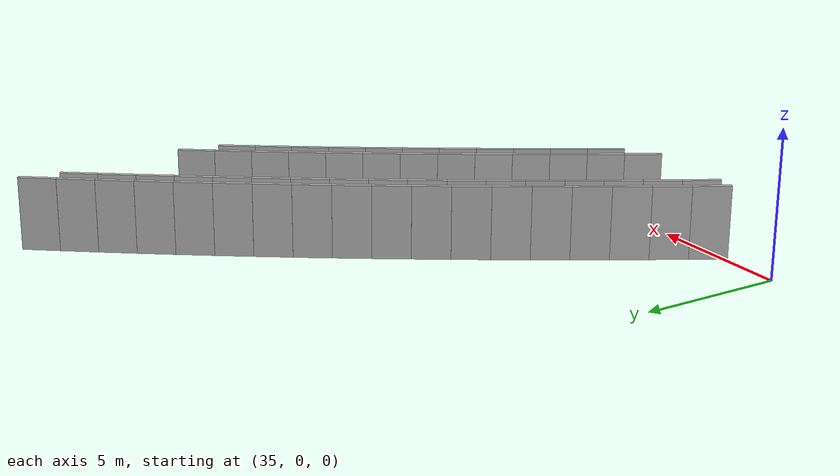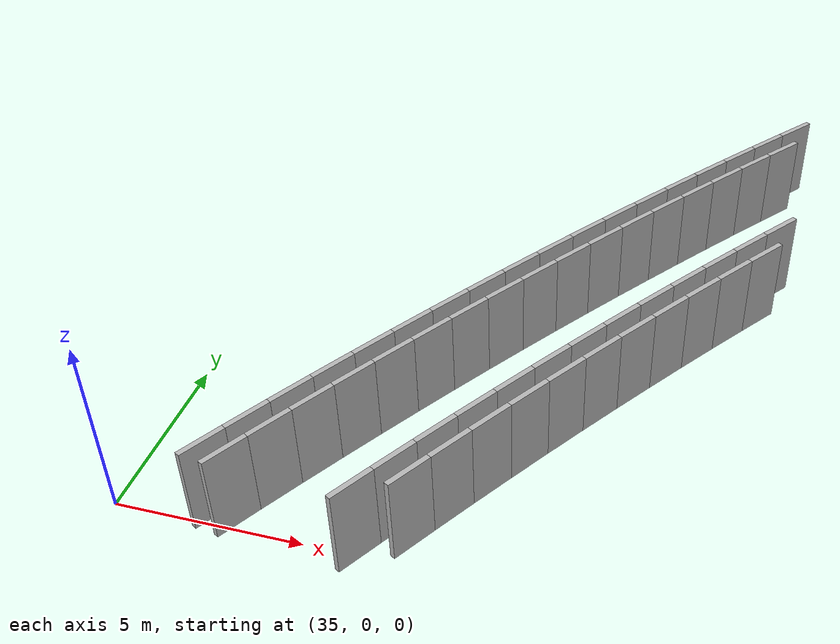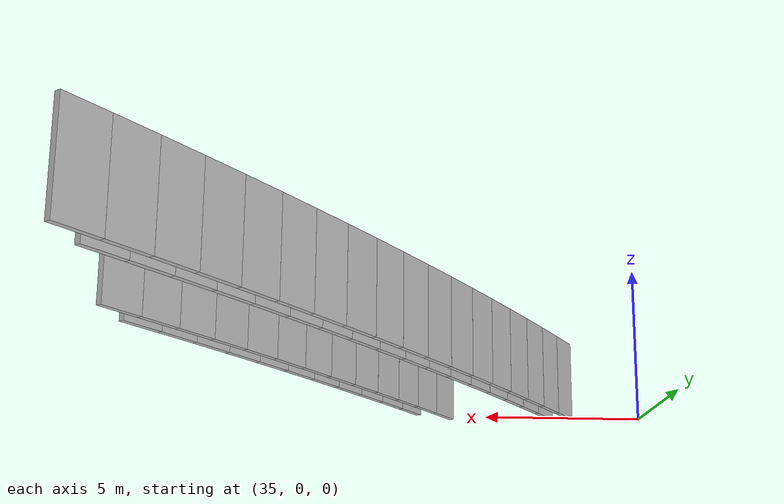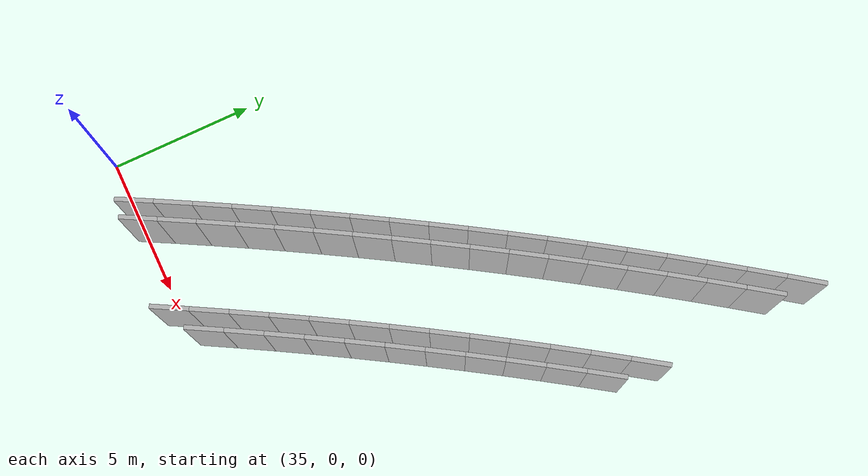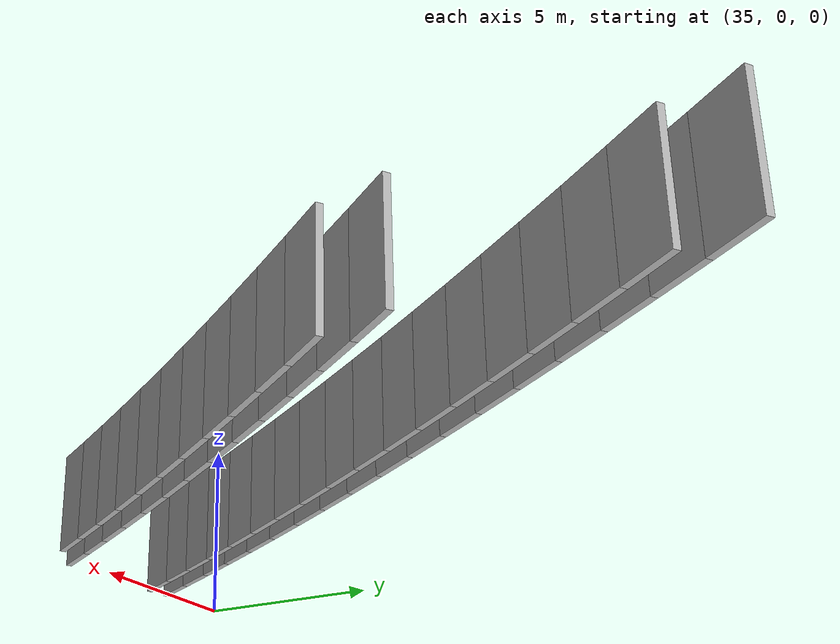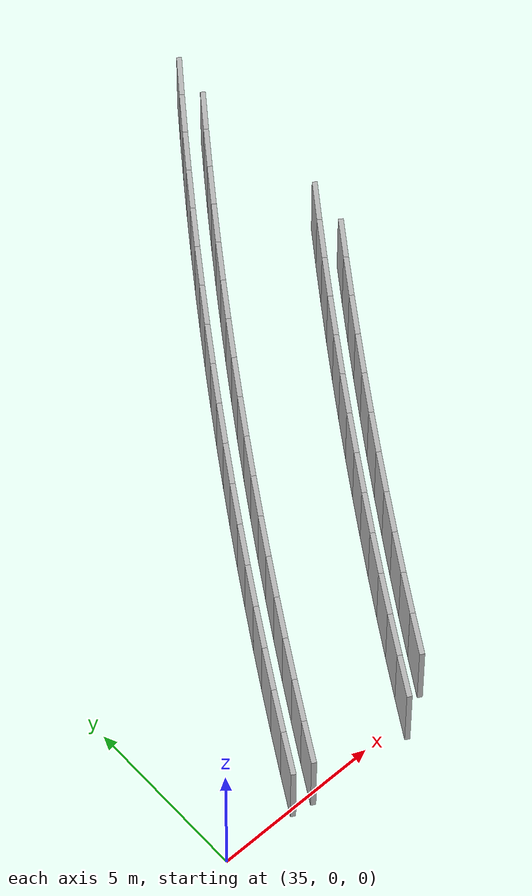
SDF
<?xml version="1.0" ?>
<sdf version="1.6">
  <model name="sps_0105">
    <pose frame="">0 0 0 0 -0 0</pose>
    <static>1</static>
    <self_collide>0</self_collide>
    <allow_auto_disable>0</allow_auto_disable>
    <link name="Wall6481">
      <kinematic>0</kinematic>
      <gravity>1</gravity>
      <self_collide>0</self_collide>
      <collision name="collision">
        <geometry>
          <box>
            <size>1.27275 0.15 2.5</size>
          </box>
        </geometry>
        <pose frame="">0 0 0 0 -0 0</pose>
      </collision>
      <visual name="visual">
        <geometry>
          <box>
            <size>1.27275 0.15 2.5</size>
          </box>
        </geometry>
        <pose frame="">0 0 0 0 -0 0</pose>
        <cast_shadows>1</cast_shadows>
        <transparency>0.0</transparency>
      </visual>
      <pose frame="">49.7471 12.8235 1.25 0 0 -2.19864</pose>
    </link>
    <link name="Wall6482">
      <kinematic>0</kinematic>
      <gravity>1</gravity>
      <self_collide>0</self_collide>
      <collision name="collision">
        <geometry>
          <box>
            <size>1.27269 0.15 2.5</size>
          </box>
        </geometry>
        <pose frame="">0 0 0 0 -0 0</pose>
      </collision>
      <visual name="visual">
        <geometry>
          <box>
            <size>1.27269 0.15 2.5</size>
          </box>
        </geometry>
        <pose frame="">0 0 0 0 -0 0</pose>
        <cast_shadows>1</cast_shadows>
        <transparency>0.0</transparency>
      </visual>
      <pose frame="">49.0037 11.7905 1.25 0 0 -2.19053</pose>
    </link>
    <link name="Wall6483">
      <kinematic>0</kinematic>
      <gravity>1</gravity>
      <self_collide>0</self_collide>
      <collision name="collision">
        <geometry>
          <box>
            <size>1.27285 0.15 2.5</size>
          </box>
        </geometry>
        <pose frame="">0 0 0 0 -0 0</pose>
      </collision>
      <visual name="visual">
        <geometry>
          <box>
            <size>1.27285 0.15 2.5</size>
          </box>
        </geometry>
        <pose frame="">0 0 0 0 -0 0</pose>
        <cast_shadows>1</cast_shadows>
        <transparency>0.0</transparency>
      </visual>
      <pose frame="">48.2685 10.7515 1.25 0 0 -2.18257</pose>
    </link>
    <link name="Wall6484">
      <kinematic>0</kinematic>
      <gravity>1</gravity>
      <self_collide>0</self_collide>
      <collision name="collision">
        <geometry>
          <box>
            <size>1.27266 0.15 2.5</size>
          </box>
        </geometry>
        <pose frame="">0 0 0 0 -0 0</pose>
      </collision>
      <visual name="visual">
        <geometry>
          <box>
            <size>1.27266 0.15 2.5</size>
          </box>
        </geometry>
        <pose frame="">0 0 0 0 -0 0</pose>
        <cast_shadows>1</cast_shadows>
        <transparency>0.0</transparency>
      </visual>
      <pose frame="">47.5419 9.70659 1.25 0 0 -2.17438</pose>
    </link>
    <link name="Wall6485">
      <kinematic>0</kinematic>
      <gravity>1</gravity>
      <self_collide>0</self_collide>
      <collision name="collision">
        <geometry>
          <box>
            <size>1.27276 0.15 2.5</size>
          </box>
        </geometry>
        <pose frame="">0 0 0 0 -0 0</pose>
      </collision>
      <visual name="visual">
        <geometry>
          <box>
            <size>1.27276 0.15 2.5</size>
          </box>
        </geometry>
        <pose frame="">0 0 0 0 -0 0</pose>
        <cast_shadows>1</cast_shadows>
        <transparency>0.0</transparency>
      </visual>
      <pose frame="">46.8237 8.6559 1.25 0 0 -2.16642</pose>
    </link>
    <link name="Wall6486">
      <kinematic>0</kinematic>
      <gravity>1</gravity>
      <self_collide>0</self_collide>
      <collision name="collision">
        <geometry>
          <box>
            <size>1.27284 0.15 2.5</size>
          </box>
        </geometry>
        <pose frame="">0 0 0 0 -0 0</pose>
      </collision>
      <visual name="visual">
        <geometry>
          <box>
            <size>1.27284 0.15 2.5</size>
          </box>
        </geometry>
        <pose frame="">0 0 0 0 -0 0</pose>
        <cast_shadows>1</cast_shadows>
        <transparency>0.0</transparency>
      </visual>
      <pose frame="">46.1139 7.59941 1.25 0 0 -2.15835</pose>
    </link>
    <link name="Wall6487">
      <kinematic>0</kinematic>
      <gravity>1</gravity>
      <self_collide>0</self_collide>
      <collision name="collision">
        <geometry>
          <box>
            <size>1.27272 0.15 2.5</size>
          </box>
        </geometry>
        <pose frame="">0 0 0 0 -0 0</pose>
      </collision>
      <visual name="visual">
        <geometry>
          <box>
            <size>1.27272 0.15 2.5</size>
          </box>
        </geometry>
        <pose frame="">0 0 0 0 -0 0</pose>
        <cast_shadows>1</cast_shadows>
        <transparency>0.0</transparency>
      </visual>
      <pose frame="">45.4127 6.53722 1.25 0 0 -2.15019</pose>
    </link>
    <link name="Wall6488">
      <kinematic>0</kinematic>
      <gravity>1</gravity>
      <self_collide>0</self_collide>
      <collision name="collision">
        <geometry>
          <box>
            <size>1.27266 0.15 2.5</size>
          </box>
        </geometry>
        <pose frame="">0 0 0 0 -0 0</pose>
      </collision>
      <visual name="visual">
        <geometry>
          <box>
            <size>1.27266 0.15 2.5</size>
          </box>
        </geometry>
        <pose frame="">0 0 0 0 -0 0</pose>
        <cast_shadows>1</cast_shadows>
        <transparency>0.0</transparency>
      </visual>
      <pose frame="">44.7201 5.4695 1.25 0 0 -2.14228</pose>
    </link>
    <link name="Wall6489">
      <kinematic>0</kinematic>
      <gravity>1</gravity>
      <self_collide>0</self_collide>
      <collision name="collision">
        <geometry>
          <box>
            <size>1.27265 0.15 2.5</size>
          </box>
        </geometry>
        <pose frame="">0 0 0 0 -0 0</pose>
      </collision>
      <visual name="visual">
        <geometry>
          <box>
            <size>1.27265 0.15 2.5</size>
          </box>
        </geometry>
        <pose frame="">0 0 0 0 -0 0</pose>
        <cast_shadows>1</cast_shadows>
        <transparency>0.0</transparency>
      </visual>
      <pose frame="">44.0361 4.39628 1.25 0 0 -2.13415</pose>
    </link>
    <link name="Wall6490">
      <kinematic>0</kinematic>
      <gravity>1</gravity>
      <self_collide>0</self_collide>
      <collision name="collision">
        <geometry>
          <box>
            <size>1.27269 0.15 2.5</size>
          </box>
        </geometry>
        <pose frame="">0 0 0 0 -0 0</pose>
      </collision>
      <visual name="visual">
        <geometry>
          <box>
            <size>1.27269 0.15 2.5</size>
          </box>
        </geometry>
        <pose frame="">0 0 0 0 -0 0</pose>
        <cast_shadows>1</cast_shadows>
        <transparency>0.0</transparency>
      </visual>
      <pose frame="">43.3607 3.31758 1.25 0 0 -2.12615</pose>
    </link>
    <link name="Wall6491">
      <kinematic>0</kinematic>
      <gravity>1</gravity>
      <self_collide>0</self_collide>
      <collision name="collision">
        <geometry>
          <box>
            <size>1.27273 0.15 2.5</size>
          </box>
        </geometry>
        <pose frame="">0 0 0 0 -0 0</pose>
      </collision>
      <visual name="visual">
        <geometry>
          <box>
            <size>1.27273 0.15 2.5</size>
          </box>
        </geometry>
        <pose frame="">0 0 0 0 -0 0</pose>
        <cast_shadows>1</cast_shadows>
        <transparency>0.0</transparency>
      </visual>
      <pose frame="">42.6941 2.23347 1.25 0 0 -2.11814</pose>
    </link>
    <link name="Wall6492">
      <kinematic>0</kinematic>
      <gravity>1</gravity>
      <self_collide>0</self_collide>
      <collision name="collision">
        <geometry>
          <box>
            <size>1.27302 0.15 2.5</size>
          </box>
        </geometry>
        <pose frame="">0 0 0 0 -0 0</pose>
      </collision>
      <visual name="visual">
        <geometry>
          <box>
            <size>1.27302 0.15 2.5</size>
          </box>
        </geometry>
        <pose frame="">0 0 0 0 -0 0</pose>
        <cast_shadows>1</cast_shadows>
        <transparency>0.0</transparency>
      </visual>
      <pose frame="">42.0361 1.14387 1.25 0 0 -2.10999</pose>
    </link>
    <link name="Wall6493">
      <kinematic>0</kinematic>
      <gravity>1</gravity>
      <self_collide>0</self_collide>
      <collision name="collision">
        <geometry>
          <box>
            <size>1.27276 0.15 2.5</size>
          </box>
        </geometry>
        <pose frame="">0 0 0 0 -0 0</pose>
      </collision>
      <visual name="visual">
        <geometry>
          <box>
            <size>1.27276 0.15 2.5</size>
          </box>
        </geometry>
        <pose frame="">0 0 0 0 -0 0</pose>
        <cast_shadows>1</cast_shadows>
        <transparency>0.0</transparency>
      </visual>
      <pose frame="">41.3869 0.0489949 1.25 0 0 -2.10203</pose>
    </link>
    <link name="Wall9102">
      <kinematic>0</kinematic>
      <gravity>1</gravity>
      <self_collide>0</self_collide>
      <collision name="collision">
        <geometry>
          <box>
            <size>1.27178 0.15 2.5</size>
          </box>
        </geometry>
        <pose frame="">0 0 0 0 -0 0</pose>
      </collision>
      <visual name="visual">
        <geometry>
          <box>
            <size>1.27178 0.15 2.5</size>
          </box>
        </geometry>
        <pose frame="">0 0 0 0 -0 0</pose>
        <cast_shadows>1</cast_shadows>
        <transparency>0.0</transparency>
      </visual>
      <pose frame="">49.4011 17.225 1.25 0 0 -2.21952</pose>
    </link>
    <link name="Wall9103">
      <kinematic>0</kinematic>
      <gravity>1</gravity>
      <self_collide>0</self_collide>
      <collision name="collision">
        <geometry>
          <box>
            <size>1.27194 0.15 2.5</size>
          </box>
        </geometry>
        <pose frame="">0 0 0 0 -0 0</pose>
      </collision>
      <visual name="visual">
        <geometry>
          <box>
            <size>1.27194 0.15 2.5</size>
          </box>
        </geometry>
        <pose frame="">0 0 0 0 -0 0</pose>
        <cast_shadows>1</cast_shadows>
        <transparency>0.0</transparency>
      </visual>
      <pose frame="">48.6366 16.2085 1.25 0 0 -2.21162</pose>
    </link>
    <link name="Wall9104">
      <kinematic>0</kinematic>
      <gravity>1</gravity>
      <self_collide>0</self_collide>
      <collision name="collision">
        <geometry>
          <box>
            <size>1.27171 0.15 2.5</size>
          </box>
        </geometry>
        <pose frame="">0 0 0 0 -0 0</pose>
      </collision>
      <visual name="visual">
        <geometry>
          <box>
            <size>1.27171 0.15 2.5</size>
          </box>
        </geometry>
        <pose frame="">0 0 0 0 -0 0</pose>
        <cast_shadows>1</cast_shadows>
        <transparency>0.0</transparency>
      </visual>
      <pose frame="">47.8805 15.1859 1.25 0 0 -2.20346</pose>
    </link>
    <link name="Wall9105">
      <kinematic>0</kinematic>
      <gravity>1</gravity>
      <self_collide>0</self_collide>
      <collision name="collision">
        <geometry>
          <box>
            <size>1.27178 0.15 2.5</size>
          </box>
        </geometry>
        <pose frame="">0 0 0 0 -0 0</pose>
      </collision>
      <visual name="visual">
        <geometry>
          <box>
            <size>1.27178 0.15 2.5</size>
          </box>
        </geometry>
        <pose frame="">0 0 0 0 -0 0</pose>
        <cast_shadows>1</cast_shadows>
        <transparency>0.0</transparency>
      </visual>
      <pose frame="">47.1325 14.1574 1.25 0 0 -2.1957</pose>
    </link>
    <link name="Wall9106">
      <kinematic>0</kinematic>
      <gravity>1</gravity>
      <self_collide>0</self_collide>
      <collision name="collision">
        <geometry>
          <box>
            <size>1.27165 0.15 2.5</size>
          </box>
        </geometry>
        <pose frame="">0 0 0 0 -0 0</pose>
      </collision>
      <visual name="visual">
        <geometry>
          <box>
            <size>1.27165 0.15 2.5</size>
          </box>
        </geometry>
        <pose frame="">0 0 0 0 -0 0</pose>
        <cast_shadows>1</cast_shadows>
        <transparency>0.0</transparency>
      </visual>
      <pose frame="">46.3926 13.1231 1.25 0 0 -2.18781</pose>
    </link>
    <link name="Wall9107">
      <kinematic>0</kinematic>
      <gravity>1</gravity>
      <self_collide>0</self_collide>
      <collision name="collision">
        <geometry>
          <box>
            <size>1.27174 0.15 2.5</size>
          </box>
        </geometry>
        <pose frame="">0 0 0 0 -0 0</pose>
      </collision>
      <visual name="visual">
        <geometry>
          <box>
            <size>1.27174 0.15 2.5</size>
          </box>
        </geometry>
        <pose frame="">0 0 0 0 -0 0</pose>
        <cast_shadows>1</cast_shadows>
        <transparency>0.0</transparency>
      </visual>
      <pose frame="">45.6609 12.083 1.25 0 0 -2.1799</pose>
    </link>
    <link name="Wall9108">
      <kinematic>0</kinematic>
      <gravity>1</gravity>
      <self_collide>0</self_collide>
      <collision name="collision">
        <geometry>
          <box>
            <size>1.27175 0.15 2.5</size>
          </box>
        </geometry>
        <pose frame="">0 0 0 0 -0 0</pose>
      </collision>
      <visual name="visual">
        <geometry>
          <box>
            <size>1.27175 0.15 2.5</size>
          </box>
        </geometry>
        <pose frame="">0 0 0 0 -0 0</pose>
        <cast_shadows>1</cast_shadows>
        <transparency>0.0</transparency>
      </visual>
      <pose frame="">44.9373 11.0372 1.25 0 0 -2.17224</pose>
    </link>
    <link name="Wall9109">
      <kinematic>0</kinematic>
      <gravity>1</gravity>
      <self_collide>0</self_collide>
      <collision name="collision">
        <geometry>
          <box>
            <size>1.27171 0.15 2.5</size>
          </box>
        </geometry>
        <pose frame="">0 0 0 0 -0 0</pose>
      </collision>
      <visual name="visual">
        <geometry>
          <box>
            <size>1.27171 0.15 2.5</size>
          </box>
        </geometry>
        <pose frame="">0 0 0 0 -0 0</pose>
        <cast_shadows>1</cast_shadows>
        <transparency>0.0</transparency>
      </visual>
      <pose frame="">44.222 9.9857 1.25 0 0 -2.16408</pose>
    </link>
    <link name="Wall9110">
      <kinematic>0</kinematic>
      <gravity>1</gravity>
      <self_collide>0</self_collide>
      <collision name="collision">
        <geometry>
          <box>
            <size>1.27183 0.15 2.5</size>
          </box>
        </geometry>
        <pose frame="">0 0 0 0 -0 0</pose>
      </collision>
      <visual name="visual">
        <geometry>
          <box>
            <size>1.27183 0.15 2.5</size>
          </box>
        </geometry>
        <pose frame="">0 0 0 0 -0 0</pose>
        <cast_shadows>1</cast_shadows>
        <transparency>0.0</transparency>
      </visual>
      <pose frame="">43.5151 8.92851 1.25 0 0 -2.15628</pose>
    </link>
    <link name="Wall9111">
      <kinematic>0</kinematic>
      <gravity>1</gravity>
      <self_collide>0</self_collide>
      <collision name="collision">
        <geometry>
          <box>
            <size>1.2719 0.15 2.5</size>
          </box>
        </geometry>
        <pose frame="">0 0 0 0 -0 0</pose>
      </collision>
      <visual name="visual">
        <geometry>
          <box>
            <size>1.2719 0.15 2.5</size>
          </box>
        </geometry>
        <pose frame="">0 0 0 0 -0 0</pose>
        <cast_shadows>1</cast_shadows>
        <transparency>0.0</transparency>
      </visual>
      <pose frame="">42.8165 7.86571 1.25 0 0 -2.14832</pose>
    </link>
    <link name="Wall9112">
      <kinematic>0</kinematic>
      <gravity>1</gravity>
      <self_collide>0</self_collide>
      <collision name="collision">
        <geometry>
          <box>
            <size>1.27174 0.15 2.5</size>
          </box>
        </geometry>
        <pose frame="">0 0 0 0 -0 0</pose>
      </collision>
      <visual name="visual">
        <geometry>
          <box>
            <size>1.27174 0.15 2.5</size>
          </box>
        </geometry>
        <pose frame="">0 0 0 0 -0 0</pose>
        <cast_shadows>1</cast_shadows>
        <transparency>0.0</transparency>
      </visual>
      <pose frame="">42.1264 6.79741 1.25 0 0 -2.14035</pose>
    </link>
    <link name="Wall9113">
      <kinematic>0</kinematic>
      <gravity>1</gravity>
      <self_collide>0</self_collide>
      <collision name="collision">
        <geometry>
          <box>
            <size>1.27169 0.15 2.5</size>
          </box>
        </geometry>
        <pose frame="">0 0 0 0 -0 0</pose>
      </collision>
      <visual name="visual">
        <geometry>
          <box>
            <size>1.27169 0.15 2.5</size>
          </box>
        </geometry>
        <pose frame="">0 0 0 0 -0 0</pose>
        <cast_shadows>1</cast_shadows>
        <transparency>0.0</transparency>
      </visual>
      <pose frame="">41.4448 5.7238 1.25 0 0 -2.13259</pose>
    </link>
    <link name="Wall9114">
      <kinematic>0</kinematic>
      <gravity>1</gravity>
      <self_collide>0</self_collide>
      <collision name="collision">
        <geometry>
          <box>
            <size>1.27178 0.15 2.5</size>
          </box>
        </geometry>
        <pose frame="">0 0 0 0 -0 0</pose>
      </collision>
      <visual name="visual">
        <geometry>
          <box>
            <size>1.27178 0.15 2.5</size>
          </box>
        </geometry>
        <pose frame="">0 0 0 0 -0 0</pose>
        <cast_shadows>1</cast_shadows>
        <transparency>0.0</transparency>
      </visual>
      <pose frame="">40.7715 4.64488 1.25 0 0 -2.12473</pose>
    </link>
    <link name="Wall9115">
      <kinematic>0</kinematic>
      <gravity>1</gravity>
      <self_collide>0</self_collide>
      <collision name="collision">
        <geometry>
          <box>
            <size>1.27187 0.15 2.5</size>
          </box>
        </geometry>
        <pose frame="">0 0 0 0 -0 0</pose>
      </collision>
      <visual name="visual">
        <geometry>
          <box>
            <size>1.27187 0.15 2.5</size>
          </box>
        </geometry>
        <pose frame="">0 0 0 0 -0 0</pose>
        <cast_shadows>1</cast_shadows>
        <transparency>0.0</transparency>
      </visual>
      <pose frame="">40.1068 3.56059 1.25 0 0 -2.11675</pose>
    </link>
    <link name="Wall9116">
      <kinematic>0</kinematic>
      <gravity>1</gravity>
      <self_collide>0</self_collide>
      <collision name="collision">
        <geometry>
          <box>
            <size>1.27164 0.15 2.5</size>
          </box>
        </geometry>
        <pose frame="">0 0 0 0 -0 0</pose>
      </collision>
      <visual name="visual">
        <geometry>
          <box>
            <size>1.27164 0.15 2.5</size>
          </box>
        </geometry>
        <pose frame="">0 0 0 0 -0 0</pose>
        <cast_shadows>1</cast_shadows>
        <transparency>0.0</transparency>
      </visual>
      <pose frame="">39.4509 2.47108 1.25 0 0 -2.10874</pose>
    </link>
    <link name="Wall9117">
      <kinematic>0</kinematic>
      <gravity>1</gravity>
      <self_collide>0</self_collide>
      <collision name="collision">
        <geometry>
          <box>
            <size>1.2717 0.15 2.5</size>
          </box>
        </geometry>
        <pose frame="">0 0 0 0 -0 0</pose>
      </collision>
      <visual name="visual">
        <geometry>
          <box>
            <size>1.2717 0.15 2.5</size>
          </box>
        </geometry>
        <pose frame="">0 0 0 0 -0 0</pose>
        <cast_shadows>1</cast_shadows>
        <transparency>0.0</transparency>
      </visual>
      <pose frame="">38.8036 1.37648 1.25 0 0 -2.1009</pose>
    </link>
    <link name="Wall9118">
      <kinematic>0</kinematic>
      <gravity>1</gravity>
      <self_collide>0</self_collide>
      <collision name="collision">
        <geometry>
          <box>
            <size>1.27192 0.15 2.5</size>
          </box>
        </geometry>
        <pose frame="">0 0 0 0 -0 0</pose>
      </collision>
      <visual name="visual">
        <geometry>
          <box>
            <size>1.27192 0.15 2.5</size>
          </box>
        </geometry>
        <pose frame="">0 0 0 0 -0 0</pose>
        <cast_shadows>1</cast_shadows>
        <transparency>0.0</transparency>
      </visual>
      <pose frame="">38.1649 0.276687 1.25 0 0 -2.09298</pose>
    </link>
    <link name="Wall16529">
      <kinematic>0</kinematic>
      <gravity>1</gravity>
      <self_collide>0</self_collide>
      <collision name="collision">
        <geometry>
          <box>
            <size>1.27247 0.15 2.5</size>
          </box>
        </geometry>
        <pose frame="">0 0 0 0 -0 0</pose>
      </collision>
      <visual name="visual">
        <geometry>
          <box>
            <size>1.27247 0.15 2.5</size>
          </box>
        </geometry>
        <pose frame="">0 0 0 0 -0 0</pose>
        <cast_shadows>1</cast_shadows>
        <transparency>0.0</transparency>
      </visual>
      <pose frame="">49.469 11.4109 1.25 0 0 -2.19029</pose>
    </link>
    <link name="Wall16530">
      <kinematic>0</kinematic>
      <gravity>1</gravity>
      <self_collide>0</self_collide>
      <collision name="collision">
        <geometry>
          <box>
            <size>1.27231 0.15 2.5</size>
          </box>
        </geometry>
        <pose frame="">0 0 0 0 -0 0</pose>
      </collision>
      <visual name="visual">
        <geometry>
          <box>
            <size>1.27231 0.15 2.5</size>
          </box>
        </geometry>
        <pose frame="">0 0 0 0 -0 0</pose>
        <cast_shadows>1</cast_shadows>
        <transparency>0.0</transparency>
      </visual>
      <pose frame="">48.7345 10.372 1.25 0 0 -2.18222</pose>
    </link>
    <link name="Wall16531">
      <kinematic>0</kinematic>
      <gravity>1</gravity>
      <self_collide>0</self_collide>
      <collision name="collision">
        <geometry>
          <box>
            <size>1.27235 0.15 2.5</size>
          </box>
        </geometry>
        <pose frame="">0 0 0 0 -0 0</pose>
      </collision>
      <visual name="visual">
        <geometry>
          <box>
            <size>1.27235 0.15 2.5</size>
          </box>
        </geometry>
        <pose frame="">0 0 0 0 -0 0</pose>
        <cast_shadows>1</cast_shadows>
        <transparency>0.0</transparency>
      </visual>
      <pose frame="">48.0084 9.32719 1.25 0 0 -2.17402</pose>
    </link>
    <link name="Wall16532">
      <kinematic>0</kinematic>
      <gravity>1</gravity>
      <self_collide>0</self_collide>
      <collision name="collision">
        <geometry>
          <box>
            <size>1.27227 0.15 2.5</size>
          </box>
        </geometry>
        <pose frame="">0 0 0 0 -0 0</pose>
      </collision>
      <visual name="visual">
        <geometry>
          <box>
            <size>1.27227 0.15 2.5</size>
          </box>
        </geometry>
        <pose frame="">0 0 0 0 -0 0</pose>
        <cast_shadows>1</cast_shadows>
        <transparency>0.0</transparency>
      </visual>
      <pose frame="">47.2908 8.2766 1.25 0 0 -2.1661</pose>
    </link>
    <link name="Wall16533">
      <kinematic>0</kinematic>
      <gravity>1</gravity>
      <self_collide>0</self_collide>
      <collision name="collision">
        <geometry>
          <box>
            <size>1.27254 0.15 2.5</size>
          </box>
        </geometry>
        <pose frame="">0 0 0 0 -0 0</pose>
      </collision>
      <visual name="visual">
        <geometry>
          <box>
            <size>1.27254 0.15 2.5</size>
          </box>
        </geometry>
        <pose frame="">0 0 0 0 -0 0</pose>
        <cast_shadows>1</cast_shadows>
        <transparency>0.0</transparency>
      </visual>
      <pose frame="">46.5815 7.2202 1.25 0 0 -2.15799</pose>
    </link>
    <link name="Wall16534">
      <kinematic>0</kinematic>
      <gravity>1</gravity>
      <self_collide>0</self_collide>
      <collision name="collision">
        <geometry>
          <box>
            <size>1.27245 0.15 2.5</size>
          </box>
        </geometry>
        <pose frame="">0 0 0 0 -0 0</pose>
      </collision>
      <visual name="visual">
        <geometry>
          <box>
            <size>1.27245 0.15 2.5</size>
          </box>
        </geometry>
        <pose frame="">0 0 0 0 -0 0</pose>
        <cast_shadows>1</cast_shadows>
        <transparency>0.0</transparency>
      </visual>
      <pose frame="">45.8809 6.158 1.25 0 0 -2.14987</pose>
    </link>
    <link name="Wall16535">
      <kinematic>0</kinematic>
      <gravity>1</gravity>
      <self_collide>0</self_collide>
      <collision name="collision">
        <geometry>
          <box>
            <size>1.27226 0.15 2.5</size>
          </box>
        </geometry>
        <pose frame="">0 0 0 0 -0 0</pose>
      </collision>
      <visual name="visual">
        <geometry>
          <box>
            <size>1.27226 0.15 2.5</size>
          </box>
        </geometry>
        <pose frame="">0 0 0 0 -0 0</pose>
        <cast_shadows>1</cast_shadows>
        <transparency>0.0</transparency>
      </visual>
      <pose frame="">45.1889 5.09029 1.25 0 0 -2.14179</pose>
    </link>
    <link name="Wall16536">
      <kinematic>0</kinematic>
      <gravity>1</gravity>
      <self_collide>0</self_collide>
      <collision name="collision">
        <geometry>
          <box>
            <size>1.27258 0.15 2.5</size>
          </box>
        </geometry>
        <pose frame="">0 0 0 0 -0 0</pose>
      </collision>
      <visual name="visual">
        <geometry>
          <box>
            <size>1.27258 0.15 2.5</size>
          </box>
        </geometry>
        <pose frame="">0 0 0 0 -0 0</pose>
        <cast_shadows>1</cast_shadows>
        <transparency>0.0</transparency>
      </visual>
      <pose frame="">44.5055 4.01698 1.25 0 0 -2.13379</pose>
    </link>
    <link name="Wall16537">
      <kinematic>0</kinematic>
      <gravity>1</gravity>
      <self_collide>0</self_collide>
      <collision name="collision">
        <geometry>
          <box>
            <size>1.27227 0.15 2.5</size>
          </box>
        </geometry>
        <pose frame="">0 0 0 0 -0 0</pose>
      </collision>
      <visual name="visual">
        <geometry>
          <box>
            <size>1.27227 0.15 2.5</size>
          </box>
        </geometry>
        <pose frame="">0 0 0 0 -0 0</pose>
        <cast_shadows>1</cast_shadows>
        <transparency>0.0</transparency>
      </visual>
      <pose frame="">43.8307 2.93819 1.25 0 0 -2.12562</pose>
    </link>
    <link name="Wall16538">
      <kinematic>0</kinematic>
      <gravity>1</gravity>
      <self_collide>0</self_collide>
      <collision name="collision">
        <geometry>
          <box>
            <size>1.27247 0.15 2.5</size>
          </box>
        </geometry>
        <pose frame="">0 0 0 0 -0 0</pose>
      </collision>
      <visual name="visual">
        <geometry>
          <box>
            <size>1.27247 0.15 2.5</size>
          </box>
        </geometry>
        <pose frame="">0 0 0 0 -0 0</pose>
        <cast_shadows>1</cast_shadows>
        <transparency>0.0</transparency>
      </visual>
      <pose frame="">43.1648 1.85399 1.25 0 0 -2.11753</pose>
    </link>
    <link name="Wall16539">
      <kinematic>0</kinematic>
      <gravity>1</gravity>
      <self_collide>0</self_collide>
      <collision name="collision">
        <geometry>
          <box>
            <size>1.27246 0.15 2.5</size>
          </box>
        </geometry>
        <pose frame="">0 0 0 0 -0 0</pose>
      </collision>
      <visual name="visual">
        <geometry>
          <box>
            <size>1.27246 0.15 2.5</size>
          </box>
        </geometry>
        <pose frame="">0 0 0 0 -0 0</pose>
        <cast_shadows>1</cast_shadows>
        <transparency>0.0</transparency>
      </visual>
      <pose frame="">42.5077 0.764388 1.25 0 0 -2.10953</pose>
    </link>
    <link name="Wall20957">
      <kinematic>0</kinematic>
      <gravity>1</gravity>
      <self_collide>0</self_collide>
      <collision name="collision">
        <geometry>
          <box>
            <size>1.28676 0.15 2.5</size>
          </box>
        </geometry>
        <pose frame="">0 0 0 0 -0 0</pose>
      </collision>
      <visual name="visual">
        <geometry>
          <box>
            <size>1.28676 0.15 2.5</size>
          </box>
        </geometry>
        <pose frame="">0 0 0 0 -0 0</pose>
        <cast_shadows>1</cast_shadows>
        <transparency>0.0</transparency>
      </visual>
      <pose frame="">49.672 18.5692 1.25 0 0 -2.22714</pose>
    </link>
    <link name="Wall20958">
      <kinematic>0</kinematic>
      <gravity>1</gravity>
      <self_collide>0</self_collide>
      <collision name="collision">
        <geometry>
          <box>
            <size>1.28692 0.15 2.5</size>
          </box>
        </geometry>
        <pose frame="">0 0 0 0 -0 0</pose>
      </collision>
      <visual name="visual">
        <geometry>
          <box>
            <size>1.28692 0.15 2.5</size>
          </box>
        </geometry>
        <pose frame="">0 0 0 0 -0 0</pose>
        <cast_shadows>1</cast_shadows>
        <transparency>0.0</transparency>
      </visual>
      <pose frame="">48.8909 17.5466 1.25 0 0 -2.21917</pose>
    </link>
    <link name="Wall20959">
      <kinematic>0</kinematic>
      <gravity>1</gravity>
      <self_collide>0</self_collide>
      <collision name="collision">
        <geometry>
          <box>
            <size>1.28702 0.15 2.5</size>
          </box>
        </geometry>
        <pose frame="">0 0 0 0 -0 0</pose>
      </collision>
      <visual name="visual">
        <geometry>
          <box>
            <size>1.28702 0.15 2.5</size>
          </box>
        </geometry>
        <pose frame="">0 0 0 0 -0 0</pose>
        <cast_shadows>1</cast_shadows>
        <transparency>0.0</transparency>
      </visual>
      <pose frame="">48.1178 16.5177 1.25 0 0 -2.21122</pose>
    </link>
    <link name="Wall20960">
      <kinematic>0</kinematic>
      <gravity>1</gravity>
      <self_collide>0</self_collide>
      <collision name="collision">
        <geometry>
          <box>
            <size>1.28684 0.15 2.5</size>
          </box>
        </geometry>
        <pose frame="">0 0 0 0 -0 0</pose>
      </collision>
      <visual name="visual">
        <geometry>
          <box>
            <size>1.28684 0.15 2.5</size>
          </box>
        </geometry>
        <pose frame="">0 0 0 0 -0 0</pose>
        <cast_shadows>1</cast_shadows>
        <transparency>0.0</transparency>
      </visual>
      <pose frame="">47.353 15.4827 1.25 0 0 -2.20313</pose>
    </link>
    <link name="Wall20961">
      <kinematic>0</kinematic>
      <gravity>1</gravity>
      <self_collide>0</self_collide>
      <collision name="collision">
        <geometry>
          <box>
            <size>1.28705 0.15 2.5</size>
          </box>
        </geometry>
        <pose frame="">0 0 0 0 -0 0</pose>
      </collision>
      <visual name="visual">
        <geometry>
          <box>
            <size>1.28705 0.15 2.5</size>
          </box>
        </geometry>
        <pose frame="">0 0 0 0 -0 0</pose>
        <cast_shadows>1</cast_shadows>
        <transparency>0.0</transparency>
      </visual>
      <pose frame="">46.5965 14.4416 1.25 0 0 -2.19521</pose>
    </link>
    <link name="Wall20962">
      <kinematic>0</kinematic>
      <gravity>1</gravity>
      <self_collide>0</self_collide>
      <collision name="collision">
        <geometry>
          <box>
            <size>1.28684 0.15 2.5</size>
          </box>
        </geometry>
        <pose frame="">0 0 0 0 -0 0</pose>
      </collision>
      <visual name="visual">
        <geometry>
          <box>
            <size>1.28684 0.15 2.5</size>
          </box>
        </geometry>
        <pose frame="">0 0 0 0 -0 0</pose>
        <cast_shadows>1</cast_shadows>
        <transparency>0.0</transparency>
      </visual>
      <pose frame="">45.8483 13.3945 1.25 0 0 -2.18723</pose>
    </link>
    <link name="Wall20963">
      <kinematic>0</kinematic>
      <gravity>1</gravity>
      <self_collide>0</self_collide>
      <collision name="collision">
        <geometry>
          <box>
            <size>1.28696 0.15 2.5</size>
          </box>
        </geometry>
        <pose frame="">0 0 0 0 -0 0</pose>
      </collision>
      <visual name="visual">
        <geometry>
          <box>
            <size>1.28696 0.15 2.5</size>
          </box>
        </geometry>
        <pose frame="">0 0 0 0 -0 0</pose>
        <cast_shadows>1</cast_shadows>
        <transparency>0.0</transparency>
      </visual>
      <pose frame="">45.1084 12.3416 1.25 0 0 -2.17945</pose>
    </link>
    <link name="Wall20964">
      <kinematic>0</kinematic>
      <gravity>1</gravity>
      <self_collide>0</self_collide>
      <collision name="collision">
        <geometry>
          <box>
            <size>1.2868 0.15 2.5</size>
          </box>
        </geometry>
        <pose frame="">0 0 0 0 -0 0</pose>
      </collision>
      <visual name="visual">
        <geometry>
          <box>
            <size>1.2868 0.15 2.5</size>
          </box>
        </geometry>
        <pose frame="">0 0 0 0 -0 0</pose>
        <cast_shadows>1</cast_shadows>
        <transparency>0.0</transparency>
      </visual>
      <pose frame="">44.3769 11.2828 1.25 0 0 -2.17118</pose>
    </link>
    <link name="Wall20965">
      <kinematic>0</kinematic>
      <gravity>1</gravity>
      <self_collide>0</self_collide>
      <collision name="collision">
        <geometry>
          <box>
            <size>1.28691 0.15 2.5</size>
          </box>
        </geometry>
        <pose frame="">0 0 0 0 -0 0</pose>
      </collision>
      <visual name="visual">
        <geometry>
          <box>
            <size>1.28691 0.15 2.5</size>
          </box>
        </geometry>
        <pose frame="">0 0 0 0 -0 0</pose>
        <cast_shadows>1</cast_shadows>
        <transparency>0.0</transparency>
      </visual>
      <pose frame="">43.654 10.2182 1.25 0 0 -2.16344</pose>
    </link>
    <link name="Wall20966">
      <kinematic>0</kinematic>
      <gravity>1</gravity>
      <self_collide>0</self_collide>
      <collision name="collision">
        <geometry>
          <box>
            <size>1.2869 0.15 2.5</size>
          </box>
        </geometry>
        <pose frame="">0 0 0 0 -0 0</pose>
      </collision>
      <visual name="visual">
        <geometry>
          <box>
            <size>1.2869 0.15 2.5</size>
          </box>
        </geometry>
        <pose frame="">0 0 0 0 -0 0</pose>
        <cast_shadows>1</cast_shadows>
        <transparency>0.0</transparency>
      </visual>
      <pose frame="">42.9395 9.14787 1.25 0 0 -2.15541</pose>
    </link>
    <link name="Wall20967">
      <kinematic>0</kinematic>
      <gravity>1</gravity>
      <self_collide>0</self_collide>
      <collision name="collision">
        <geometry>
          <box>
            <size>1.28687 0.15 2.5</size>
          </box>
        </geometry>
        <pose frame="">0 0 0 0 -0 0</pose>
      </collision>
      <visual name="visual">
        <geometry>
          <box>
            <size>1.28687 0.15 2.5</size>
          </box>
        </geometry>
        <pose frame="">0 0 0 0 -0 0</pose>
        <cast_shadows>1</cast_shadows>
        <transparency>0.0</transparency>
      </visual>
      <pose frame="">42.2336 8.07188 1.25 0 0 -2.14742</pose>
    </link>
    <link name="Wall20968">
      <kinematic>0</kinematic>
      <gravity>1</gravity>
      <self_collide>0</self_collide>
      <collision name="collision">
        <geometry>
          <box>
            <size>1.28693 0.15 2.5</size>
          </box>
        </geometry>
        <pose frame="">0 0 0 0 -0 0</pose>
      </collision>
      <visual name="visual">
        <geometry>
          <box>
            <size>1.28693 0.15 2.5</size>
          </box>
        </geometry>
        <pose frame="">0 0 0 0 -0 0</pose>
        <cast_shadows>1</cast_shadows>
        <transparency>0.0</transparency>
      </visual>
      <pose frame="">41.5363 6.99028 1.25 0 0 -2.13944</pose>
    </link>
    <link name="Wall20969">
      <kinematic>0</kinematic>
      <gravity>1</gravity>
      <self_collide>0</self_collide>
      <collision name="collision">
        <geometry>
          <box>
            <size>1.28686 0.15 2.5</size>
          </box>
        </geometry>
        <pose frame="">0 0 0 0 -0 0</pose>
      </collision>
      <visual name="visual">
        <geometry>
          <box>
            <size>1.28686 0.15 2.5</size>
          </box>
        </geometry>
        <pose frame="">0 0 0 0 -0 0</pose>
        <cast_shadows>1</cast_shadows>
        <transparency>0.0</transparency>
      </visual>
      <pose frame="">40.8476 5.90318 1.25 0 0 -2.13155</pose>
    </link>
    <link name="Wall20970">
      <kinematic>0</kinematic>
      <gravity>1</gravity>
      <self_collide>0</self_collide>
      <collision name="collision">
        <geometry>
          <box>
            <size>1.28692 0.15 2.5</size>
          </box>
        </geometry>
        <pose frame="">0 0 0 0 -0 0</pose>
      </collision>
      <visual name="visual">
        <geometry>
          <box>
            <size>1.28692 0.15 2.5</size>
          </box>
        </geometry>
        <pose frame="">0 0 0 0 -0 0</pose>
        <cast_shadows>1</cast_shadows>
        <transparency>0.0</transparency>
      </visual>
      <pose frame="">40.1676 4.81068 1.25 0 0 -2.12364</pose>
    </link>
    <link name="Wall20971">
      <kinematic>0</kinematic>
      <gravity>1</gravity>
      <self_collide>0</self_collide>
      <collision name="collision">
        <geometry>
          <box>
            <size>1.28683 0.15 2.5</size>
          </box>
        </geometry>
        <pose frame="">0 0 0 0 -0 0</pose>
      </collision>
      <visual name="visual">
        <geometry>
          <box>
            <size>1.28683 0.15 2.5</size>
          </box>
        </geometry>
        <pose frame="">0 0 0 0 -0 0</pose>
        <cast_shadows>1</cast_shadows>
        <transparency>0.0</transparency>
      </visual>
      <pose frame="">39.4963 3.71278 1.25 0 0 -2.11552</pose>
    </link>
    <link name="Wall20972">
      <kinematic>0</kinematic>
      <gravity>1</gravity>
      <self_collide>0</self_collide>
      <collision name="collision">
        <geometry>
          <box>
            <size>1.28684 0.15 2.5</size>
          </box>
        </geometry>
        <pose frame="">0 0 0 0 -0 0</pose>
      </collision>
      <visual name="visual">
        <geometry>
          <box>
            <size>1.28684 0.15 2.5</size>
          </box>
        </geometry>
        <pose frame="">0 0 0 0 -0 0</pose>
        <cast_shadows>1</cast_shadows>
        <transparency>0.0</transparency>
      </visual>
      <pose frame="">38.8338 2.6096 1.25 0 0 -2.10771</pose>
    </link>
    <link name="Wall20973">
      <kinematic>0</kinematic>
      <gravity>1</gravity>
      <self_collide>0</self_collide>
      <collision name="collision">
        <geometry>
          <box>
            <size>1.28697 0.15 2.5</size>
          </box>
        </geometry>
        <pose frame="">0 0 0 0 -0 0</pose>
      </collision>
      <visual name="visual">
        <geometry>
          <box>
            <size>1.28697 0.15 2.5</size>
          </box>
        </geometry>
        <pose frame="">0 0 0 0 -0 0</pose>
        <cast_shadows>1</cast_shadows>
        <transparency>0.0</transparency>
      </visual>
      <pose frame="">38.18 1.50111 1.25 0 0 -2.09956</pose>
    </link>
    <link name="Wall20974">
      <kinematic>0</kinematic>
      <gravity>1</gravity>
      <self_collide>0</self_collide>
      <collision name="collision">
        <geometry>
          <box>
            <size>1.28693 0.15 2.5</size>
          </box>
        </geometry>
        <pose frame="">0 0 0 0 -0 0</pose>
      </collision>
      <visual name="visual">
        <geometry>
          <box>
            <size>1.28693 0.15 2.5</size>
          </box>
        </geometry>
        <pose frame="">0 0 0 0 -0 0</pose>
        <cast_shadows>1</cast_shadows>
        <transparency>0.0</transparency>
      </visual>
      <pose frame="">37.5353 0.387313 1.25 0 0 -2.09147</pose>
    </link>
  </model>
</sdf>
